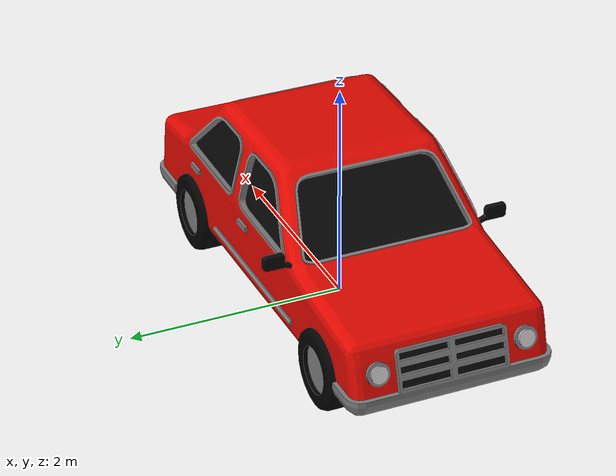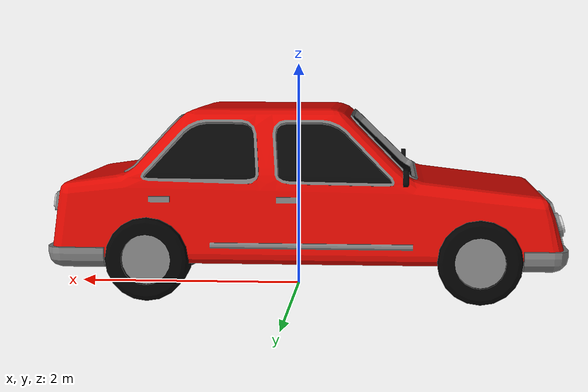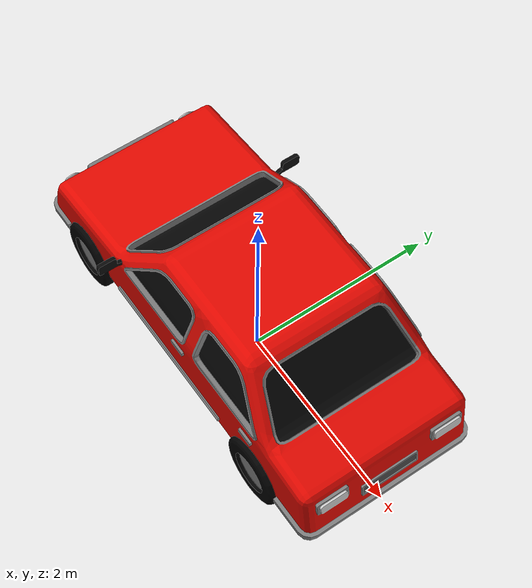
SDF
<?xml version='1.0'?>
<sdf version="1.3">

  <model name="Car">
    <pose> 0.0 0.0 0.0  0.0 0.0 0.0 </pose>
    <static>true</static>

    <link name="car_link">

      <visual name="visual">
        <geometry>
          <mesh><uri>model://Car/meshes/car.dae</uri><scale>0.8 0.8 0.8</scale></mesh>
        </geometry>
      </visual>

      <collision name="collision">
        <geometry>
          <mesh><uri>model://Car/meshes/car.dae</uri><scale>0.8 0.8 0.8</scale></mesh>
        </geometry>
      </collision>

    </link>
  </model>

</sdf>
